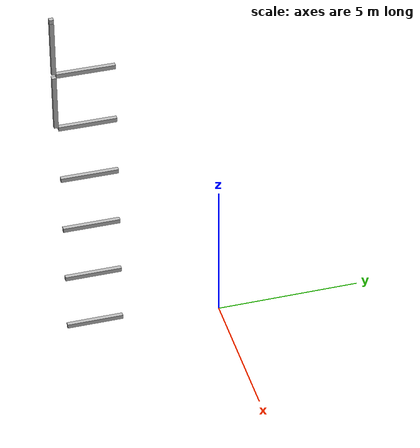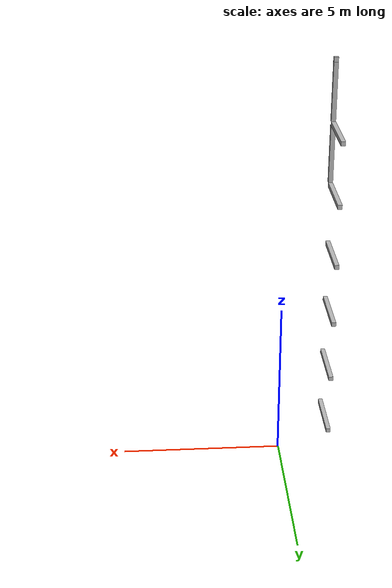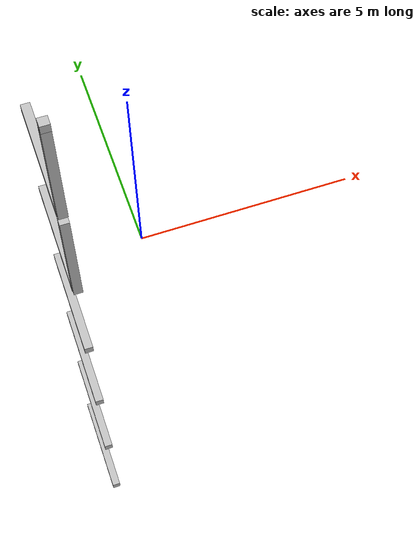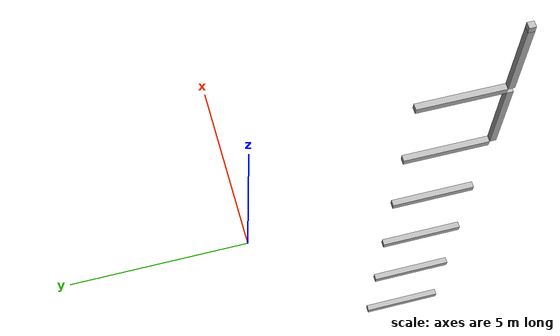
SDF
<sdf version="1.7">
 <world name="default">
  <model name="orthogonal_747_2.000.15_TS">
   <static>1</static>
   <link name="y_link_0_0_2">
    <inertial>
     <mass>1</mass>
     <inertia>
      <ixx>0.166667</ixx>
      <ixy>0</ixy>
      <ixz>0</ixz>
      <iyy>0.166667</iyy>
      <iyz>0</iyz>
      <izz>0.166667</izz>
     </inertia>
    </inertial>
    <pose>4.3 1.075 1.075 0 -0 0</pose>
    <visual name="visual_0">
     <laser_retro>50</laser_retro>
     <geometry><box><size>0.15 1e-06 0.15</size></box></geometry>
     <material>
      <script><name>Gazebo/Grey</name><uri>file://media/materials/scripts/gazebo.material</uri></script>
      <shader type="pixel"><normal_map>__default__</normal_map></shader>
      <ambient>0.678 0.498 0.659 1</ambient>
      <diffuse>0.7 0.7 0.7 1</diffuse>
      <specular>0.01 0.01 0.01 1</specular>
      <emissive>0 0 0 1</emissive>
     </material>
     <pose>0 -1 0 0 -0 0</pose>
     <transparency>1</transparency>
    </visual>
    <visual name="visual_1">
     <laser_retro>51</laser_retro>
     <geometry><box><size>0.15 1e-06 0.15</size></box></geometry>
     <material>
      <script><name>Gazebo/Grey</name><uri>file://media/materials/scripts/gazebo.material</uri></script>
      <shader type="pixel"><normal_map>__default__</normal_map></shader>
      <ambient>0.447 0.624 0.812 1</ambient>
      <diffuse>0.7 0.7 0.7 1</diffuse>
      <specular>0.01 0.01 0.01 1</specular>
      <emissive>0 0 0 1</emissive>
     </material>
     <pose>0 1 0 0 -0 0</pose>
     <transparency>1</transparency>
    </visual>
    <visual name="visual_2">
     <laser_retro>52</laser_retro>
     <geometry><box><size>0.15 2 1e-06</size></box></geometry>
     <material>
      <script><name>Gazebo/Grey</name><uri>file://media/materials/scripts/gazebo.material</uri></script>
      <shader type="pixel"><normal_map>__default__</normal_map></shader>
      <ambient>0.988 0.686 0.243 1</ambient>
      <diffuse>0.7 0.7 0.7 1</diffuse>
      <specular>0.01 0.01 0.01 1</specular>
      <emissive>0 0 0 1</emissive>
     </material>
     <pose>0 0 -0.075 0 -0 0</pose>
     <transparency>1</transparency>
    </visual>
    <visual name="visual_3">
     <laser_retro>53</laser_retro>
     <geometry><box><size>1e-06 2 0.15</size></box></geometry>
     <material>
      <script><name>Gazebo/Grey</name><uri>file://media/materials/scripts/gazebo.material</uri></script>
      <shader type="pixel"><normal_map>__default__</normal_map></shader>
      <ambient>0.988 0.914 0.31 1</ambient>
      <diffuse>0.7 0.7 0.7 1</diffuse>
      <specular>0.01 0.01 0.01 1</specular>
      <emissive>0 0 0 1</emissive>
     </material>
     <pose>0.075 0 0 0 -0 0</pose>
     <transparency>1</transparency>
    </visual>
    <visual name="visual_4">
     <laser_retro>54</laser_retro>
     <geometry><box><size>0.15 2 1e-06</size></box></geometry>
     <material>
      <script><name>Gazebo/Grey</name><uri>file://media/materials/scripts/gazebo.material</uri></script>
      <shader type="pixel"><normal_map>__default__</normal_map></shader>
      <ambient>0.937 0.161 0.161 1</ambient>
      <diffuse>0.7 0.7 0.7 1</diffuse>
      <specular>0.01 0.01 0.01 1</specular>
      <emissive>0 0 0 1</emissive>
     </material>
     <pose>0 0 0.075 0 -0 0</pose>
     <transparency>1</transparency>
    </visual>
    <visual name="visual_5">
     <laser_retro>55</laser_retro>
     <geometry><box><size>1e-06 2 0.15</size></box></geometry>
     <material>
      <script><name>Gazebo/Grey</name><uri>file://media/materials/scripts/gazebo.material</uri></script>
      <shader type="pixel"><normal_map>__default__</normal_map></shader>
      <ambient>0.541 0.886 0.204 1</ambient>
      <diffuse>0.7 0.7 0.7 1</diffuse>
      <specular>0.01 0.01 0.01 1</specular>
      <emissive>0 0 0 1</emissive>
     </material>
     <pose>-0.075 0 0 0 -0 0</pose>
     <transparency>1</transparency>
    </visual>
    <visual name="visual_texture">
     <geometry><box><size>0.149985 1.9998 0.149985</size></box></geometry>
     <material>
      <script>
       <uri>model://BASE_MODELS/simple_block_v2_textured/materials/scripts</uri>
       <uri>model://BASE_MODELS/simple_block_v2_textured/materials/textures</uri>
       <name>metal</name>
      </script>
     </material>
     <laser_retro>56</laser_retro>
    </visual>
    <collision name="collision">
     <geometry><box><size>0.15 2 0.15</size></box></geometry>
     <surface>
      <friction>
       <ode><mu>1</mu><mu2>1</mu2><fdir1>0 0 0</fdir1><slip1>0</slip1><slip2>0</slip2></ode>
       <torsional>
        <coefficient>1</coefficient>
        <patch_radius>0</patch_radius>
        <surface_radius>0</surface_radius>
        <use_patch_radius>1</use_patch_radius>
        <ode><slip>0</slip></ode>
       </torsional>
      </friction>
      <bounce><restitution_coefficient>0</restitution_coefficient><threshold>1e+06</threshold></bounce>
      <contact>
       <collide_without_contact>0</collide_without_contact>
       <collide_without_contact_bitmask>1</collide_without_contact_bitmask>
       <collide_bitmask>1</collide_bitmask>
       <ode>
        <soft_cfm>0</soft_cfm>
        <soft_erp>0.2</soft_erp>
        <kp>1e+13</kp>
        <kd>1</kd>
        <max_vel>0.01</max_vel>
        <min_depth>0</min_depth>
       </ode>
       <bullet>
        <split_impulse>1</split_impulse>
        <split_impulse_penetration_threshold>-0.01</split_impulse_penetration_threshold>
        <soft_cfm>0</soft_cfm>
        <soft_erp>0.2</soft_erp>
        <kp>1e+13</kp>
        <kd>1</kd>
       </bullet>
      </contact>
     </surface>
    </collision>
   </link>
   <link name="y_link_1_0_2">
    <inertial>
     <mass>1</mass>
     <inertia>
      <ixx>0.166667</ixx>
      <ixy>0</ixy>
      <ixz>0</ixz>
      <iyy>0.166667</iyy>
      <iyz>0</iyz>
      <izz>0.166667</izz>
     </inertia>
    </inertial>
    <pose>4.3 1.075 3.225 0 -0 0</pose>
    <visual name="visual_0">
     <laser_retro>813</laser_retro>
     <geometry><box><size>0.15 1e-06 0.15</size></box></geometry>
     <material>
      <script><name>Gazebo/Grey</name><uri>file://media/materials/scripts/gazebo.material</uri></script>
      <shader type="pixel"><normal_map>__default__</normal_map></shader>
      <ambient>0.678 0.498 0.659 1</ambient>
      <diffuse>0.7 0.7 0.7 1</diffuse>
      <specular>0.01 0.01 0.01 1</specular>
      <emissive>0 0 0 1</emissive>
     </material>
     <pose>0 -1 0 0 -0 0</pose>
     <transparency>1</transparency>
    </visual>
    <visual name="visual_1">
     <laser_retro>814</laser_retro>
     <geometry><box><size>0.15 1e-06 0.15</size></box></geometry>
     <material>
      <script><name>Gazebo/Grey</name><uri>file://media/materials/scripts/gazebo.material</uri></script>
      <shader type="pixel"><normal_map>__default__</normal_map></shader>
      <ambient>0.447 0.624 0.812 1</ambient>
      <diffuse>0.7 0.7 0.7 1</diffuse>
      <specular>0.01 0.01 0.01 1</specular>
      <emissive>0 0 0 1</emissive>
     </material>
     <pose>0 1 0 0 -0 0</pose>
     <transparency>1</transparency>
    </visual>
    <visual name="visual_2">
     <laser_retro>815</laser_retro>
     <geometry><box><size>0.15 2 1e-06</size></box></geometry>
     <material>
      <script><name>Gazebo/Grey</name><uri>file://media/materials/scripts/gazebo.material</uri></script>
      <shader type="pixel"><normal_map>__default__</normal_map></shader>
      <ambient>0.988 0.686 0.243 1</ambient>
      <diffuse>0.7 0.7 0.7 1</diffuse>
      <specular>0.01 0.01 0.01 1</specular>
      <emissive>0 0 0 1</emissive>
     </material>
     <pose>0 0 -0.075 0 -0 0</pose>
     <transparency>1</transparency>
    </visual>
    <visual name="visual_3">
     <laser_retro>816</laser_retro>
     <geometry><box><size>1e-06 2 0.15</size></box></geometry>
     <material>
      <script><name>Gazebo/Grey</name><uri>file://media/materials/scripts/gazebo.material</uri></script>
      <shader type="pixel"><normal_map>__default__</normal_map></shader>
      <ambient>0.988 0.914 0.31 1</ambient>
      <diffuse>0.7 0.7 0.7 1</diffuse>
      <specular>0.01 0.01 0.01 1</specular>
      <emissive>0 0 0 1</emissive>
     </material>
     <pose>0.075 0 0 0 -0 0</pose>
     <transparency>1</transparency>
    </visual>
    <visual name="visual_4">
     <laser_retro>817</laser_retro>
     <geometry><box><size>0.15 2 1e-06</size></box></geometry>
     <material>
      <script><name>Gazebo/Grey</name><uri>file://media/materials/scripts/gazebo.material</uri></script>
      <shader type="pixel"><normal_map>__default__</normal_map></shader>
      <ambient>0.937 0.161 0.161 1</ambient>
      <diffuse>0.7 0.7 0.7 1</diffuse>
      <specular>0.01 0.01 0.01 1</specular>
      <emissive>0 0 0 1</emissive>
     </material>
     <pose>0 0 0.075 0 -0 0</pose>
     <transparency>1</transparency>
    </visual>
    <visual name="visual_5">
     <laser_retro>818</laser_retro>
     <geometry><box><size>1e-06 2 0.15</size></box></geometry>
     <material>
      <script><name>Gazebo/Grey</name><uri>file://media/materials/scripts/gazebo.material</uri></script>
      <shader type="pixel"><normal_map>__default__</normal_map></shader>
      <ambient>0.541 0.886 0.204 1</ambient>
      <diffuse>0.7 0.7 0.7 1</diffuse>
      <specular>0.01 0.01 0.01 1</specular>
      <emissive>0 0 0 1</emissive>
     </material>
     <pose>-0.075 0 0 0 -0 0</pose>
     <transparency>1</transparency>
    </visual>
    <visual name="visual_texture">
     <geometry><box><size>0.149985 1.9998 0.149985</size></box></geometry>
     <material>
      <script>
       <uri>model://BASE_MODELS/simple_block_v2_textured/materials/scripts</uri>
       <uri>model://BASE_MODELS/simple_block_v2_textured/materials/textures</uri>
       <name>metal</name>
      </script>
     </material>
     <laser_retro>819</laser_retro>
    </visual>
    <collision name="collision">
     <geometry><box><size>0.15 2 0.15</size></box></geometry>
     <surface>
      <friction>
       <ode><mu>1</mu><mu2>1</mu2><fdir1>0 0 0</fdir1><slip1>0</slip1><slip2>0</slip2></ode>
       <torsional>
        <coefficient>1</coefficient>
        <patch_radius>0</patch_radius>
        <surface_radius>0</surface_radius>
        <use_patch_radius>1</use_patch_radius>
        <ode><slip>0</slip></ode>
       </torsional>
      </friction>
      <bounce><restitution_coefficient>0</restitution_coefficient><threshold>1e+06</threshold></bounce>
      <contact>
       <collide_without_contact>0</collide_without_contact>
       <collide_without_contact_bitmask>1</collide_without_contact_bitmask>
       <collide_bitmask>1</collide_bitmask>
       <ode>
        <soft_cfm>0</soft_cfm>
        <soft_erp>0.2</soft_erp>
        <kp>1e+13</kp>
        <kd>1</kd>
        <max_vel>0.01</max_vel>
        <min_depth>0</min_depth>
       </ode>
       <bullet>
        <split_impulse>1</split_impulse>
        <split_impulse_penetration_threshold>-0.01</split_impulse_penetration_threshold>
        <soft_cfm>0</soft_cfm>
        <soft_erp>0.2</soft_erp>
        <kp>1e+13</kp>
        <kd>1</kd>
       </bullet>
      </contact>
     </surface>
    </collision>
   </link>
   <link name="y_link_2_0_2">
    <inertial>
     <mass>1</mass>
     <inertia>
      <ixx>0.166667</ixx>
      <ixy>0</ixy>
      <ixz>0</ixz>
      <iyy>0.166667</iyy>
      <iyz>0</iyz>
      <izz>0.166667</izz>
     </inertia>
    </inertial>
    <pose>4.3 1.075 5.375 0 -0 0</pose>
    <visual name="visual_0">
     <laser_retro>1716</laser_retro>
     <geometry><box><size>0.15 1e-06 0.15</size></box></geometry>
     <material>
      <script><name>Gazebo/Grey</name><uri>file://media/materials/scripts/gazebo.material</uri></script>
      <shader type="pixel"><normal_map>__default__</normal_map></shader>
      <ambient>0.678 0.498 0.659 1</ambient>
      <diffuse>0.7 0.7 0.7 1</diffuse>
      <specular>0.01 0.01 0.01 1</specular>
      <emissive>0 0 0 1</emissive>
     </material>
     <pose>0 -1 0 0 -0 0</pose>
     <transparency>1</transparency>
    </visual>
    <visual name="visual_1">
     <laser_retro>1717</laser_retro>
     <geometry><box><size>0.15 1e-06 0.15</size></box></geometry>
     <material>
      <script><name>Gazebo/Grey</name><uri>file://media/materials/scripts/gazebo.material</uri></script>
      <shader type="pixel"><normal_map>__default__</normal_map></shader>
      <ambient>0.447 0.624 0.812 1</ambient>
      <diffuse>0.7 0.7 0.7 1</diffuse>
      <specular>0.01 0.01 0.01 1</specular>
      <emissive>0 0 0 1</emissive>
     </material>
     <pose>0 1 0 0 -0 0</pose>
     <transparency>1</transparency>
    </visual>
    <visual name="visual_2">
     <laser_retro>1718</laser_retro>
     <geometry><box><size>0.15 2 1e-06</size></box></geometry>
     <material>
      <script><name>Gazebo/Grey</name><uri>file://media/materials/scripts/gazebo.material</uri></script>
      <shader type="pixel"><normal_map>__default__</normal_map></shader>
      <ambient>0.988 0.686 0.243 1</ambient>
      <diffuse>0.7 0.7 0.7 1</diffuse>
      <specular>0.01 0.01 0.01 1</specular>
      <emissive>0 0 0 1</emissive>
     </material>
     <pose>0 0 -0.075 0 -0 0</pose>
     <transparency>1</transparency>
    </visual>
    <visual name="visual_3">
     <laser_retro>1719</laser_retro>
     <geometry><box><size>1e-06 2 0.15</size></box></geometry>
     <material>
      <script><name>Gazebo/Grey</name><uri>file://media/materials/scripts/gazebo.material</uri></script>
      <shader type="pixel"><normal_map>__default__</normal_map></shader>
      <ambient>0.988 0.914 0.31 1</ambient>
      <diffuse>0.7 0.7 0.7 1</diffuse>
      <specular>0.01 0.01 0.01 1</specular>
      <emissive>0 0 0 1</emissive>
     </material>
     <pose>0.075 0 0 0 -0 0</pose>
     <transparency>1</transparency>
    </visual>
    <visual name="visual_4">
     <laser_retro>1720</laser_retro>
     <geometry><box><size>0.15 2 1e-06</size></box></geometry>
     <material>
      <script><name>Gazebo/Grey</name><uri>file://media/materials/scripts/gazebo.material</uri></script>
      <shader type="pixel"><normal_map>__default__</normal_map></shader>
      <ambient>0.937 0.161 0.161 1</ambient>
      <diffuse>0.7 0.7 0.7 1</diffuse>
      <specular>0.01 0.01 0.01 1</specular>
      <emissive>0 0 0 1</emissive>
     </material>
     <pose>0 0 0.075 0 -0 0</pose>
     <transparency>1</transparency>
    </visual>
    <visual name="visual_5">
     <laser_retro>1721</laser_retro>
     <geometry><box><size>1e-06 2 0.15</size></box></geometry>
     <material>
      <script><name>Gazebo/Grey</name><uri>file://media/materials/scripts/gazebo.material</uri></script>
      <shader type="pixel"><normal_map>__default__</normal_map></shader>
      <ambient>0.541 0.886 0.204 1</ambient>
      <diffuse>0.7 0.7 0.7 1</diffuse>
      <specular>0.01 0.01 0.01 1</specular>
      <emissive>0 0 0 1</emissive>
     </material>
     <pose>-0.075 0 0 0 -0 0</pose>
     <transparency>1</transparency>
    </visual>
    <visual name="visual_texture">
     <geometry><box><size>0.149985 1.9998 0.149985</size></box></geometry>
     <material>
      <script>
       <uri>model://BASE_MODELS/simple_block_v2_textured/materials/scripts</uri>
       <uri>model://BASE_MODELS/simple_block_v2_textured/materials/textures</uri>
       <name>metal</name>
      </script>
     </material>
     <laser_retro>1722</laser_retro>
    </visual>
    <collision name="collision">
     <geometry><box><size>0.15 2 0.15</size></box></geometry>
     <surface>
      <friction>
       <ode><mu>1</mu><mu2>1</mu2><fdir1>0 0 0</fdir1><slip1>0</slip1><slip2>0</slip2></ode>
       <torsional>
        <coefficient>1</coefficient>
        <patch_radius>0</patch_radius>
        <surface_radius>0</surface_radius>
        <use_patch_radius>1</use_patch_radius>
        <ode><slip>0</slip></ode>
       </torsional>
      </friction>
      <bounce><restitution_coefficient>0</restitution_coefficient><threshold>1e+06</threshold></bounce>
      <contact>
       <collide_without_contact>0</collide_without_contact>
       <collide_without_contact_bitmask>1</collide_without_contact_bitmask>
       <collide_bitmask>1</collide_bitmask>
       <ode>
        <soft_cfm>0</soft_cfm>
        <soft_erp>0.2</soft_erp>
        <kp>1e+13</kp>
        <kd>1</kd>
        <max_vel>0.01</max_vel>
        <min_depth>0</min_depth>
       </ode>
       <bullet>
        <split_impulse>1</split_impulse>
        <split_impulse_penetration_threshold>-0.01</split_impulse_penetration_threshold>
        <soft_cfm>0</soft_cfm>
        <soft_erp>0.2</soft_erp>
        <kp>1e+13</kp>
        <kd>1</kd>
       </bullet>
      </contact>
     </surface>
    </collision>
   </link>
   <link name="y_link_3_0_2">
    <inertial>
     <mass>1</mass>
     <inertia>
      <ixx>0.166667</ixx>
      <ixy>0</ixy>
      <ixz>0</ixz>
      <iyy>0.166667</iyy>
      <iyz>0</iyz>
      <izz>0.166667</izz>
     </inertia>
    </inertial>
    <pose>4.3 1.075 7.525 0 -0 0</pose>
    <visual name="visual_0">
     <laser_retro>2619</laser_retro>
     <geometry><box><size>0.15 1e-06 0.15</size></box></geometry>
     <material>
      <script><name>Gazebo/Grey</name><uri>file://media/materials/scripts/gazebo.material</uri></script>
      <shader type="pixel"><normal_map>__default__</normal_map></shader>
      <ambient>0.678 0.498 0.659 1</ambient>
      <diffuse>0.7 0.7 0.7 1</diffuse>
      <specular>0.01 0.01 0.01 1</specular>
      <emissive>0 0 0 1</emissive>
     </material>
     <pose>0 -1 0 0 -0 0</pose>
     <transparency>1</transparency>
    </visual>
    <visual name="visual_1">
     <laser_retro>2620</laser_retro>
     <geometry><box><size>0.15 1e-06 0.15</size></box></geometry>
     <material>
      <script><name>Gazebo/Grey</name><uri>file://media/materials/scripts/gazebo.material</uri></script>
      <shader type="pixel"><normal_map>__default__</normal_map></shader>
      <ambient>0.447 0.624 0.812 1</ambient>
      <diffuse>0.7 0.7 0.7 1</diffuse>
      <specular>0.01 0.01 0.01 1</specular>
      <emissive>0 0 0 1</emissive>
     </material>
     <pose>0 1 0 0 -0 0</pose>
     <transparency>1</transparency>
    </visual>
    <visual name="visual_2">
     <laser_retro>2621</laser_retro>
     <geometry><box><size>0.15 2 1e-06</size></box></geometry>
     <material>
      <script><name>Gazebo/Grey</name><uri>file://media/materials/scripts/gazebo.material</uri></script>
      <shader type="pixel"><normal_map>__default__</normal_map></shader>
      <ambient>0.988 0.686 0.243 1</ambient>
      <diffuse>0.7 0.7 0.7 1</diffuse>
      <specular>0.01 0.01 0.01 1</specular>
      <emissive>0 0 0 1</emissive>
     </material>
     <pose>0 0 -0.075 0 -0 0</pose>
     <transparency>1</transparency>
    </visual>
    <visual name="visual_3">
     <laser_retro>2622</laser_retro>
     <geometry><box><size>1e-06 2 0.15</size></box></geometry>
     <material>
      <script><name>Gazebo/Grey</name><uri>file://media/materials/scripts/gazebo.material</uri></script>
      <shader type="pixel"><normal_map>__default__</normal_map></shader>
      <ambient>0.988 0.914 0.31 1</ambient>
      <diffuse>0.7 0.7 0.7 1</diffuse>
      <specular>0.01 0.01 0.01 1</specular>
      <emissive>0 0 0 1</emissive>
     </material>
     <pose>0.075 0 0 0 -0 0</pose>
     <transparency>1</transparency>
    </visual>
    <visual name="visual_4">
     <laser_retro>2623</laser_retro>
     <geometry><box><size>0.15 2 1e-06</size></box></geometry>
     <material>
      <script><name>Gazebo/Grey</name><uri>file://media/materials/scripts/gazebo.material</uri></script>
      <shader type="pixel"><normal_map>__default__</normal_map></shader>
      <ambient>0.937 0.161 0.161 1</ambient>
      <diffuse>0.7 0.7 0.7 1</diffuse>
      <specular>0.01 0.01 0.01 1</specular>
      <emissive>0 0 0 1</emissive>
     </material>
     <pose>0 0 0.075 0 -0 0</pose>
     <transparency>1</transparency>
    </visual>
    <visual name="visual_5">
     <laser_retro>2624</laser_retro>
     <geometry><box><size>1e-06 2 0.15</size></box></geometry>
     <material>
      <script><name>Gazebo/Grey</name><uri>file://media/materials/scripts/gazebo.material</uri></script>
      <shader type="pixel"><normal_map>__default__</normal_map></shader>
      <ambient>0.541 0.886 0.204 1</ambient>
      <diffuse>0.7 0.7 0.7 1</diffuse>
      <specular>0.01 0.01 0.01 1</specular>
      <emissive>0 0 0 1</emissive>
     </material>
     <pose>-0.075 0 0 0 -0 0</pose>
     <transparency>1</transparency>
    </visual>
    <visual name="visual_texture">
     <geometry><box><size>0.149985 1.9998 0.149985</size></box></geometry>
     <material>
      <script>
       <uri>model://BASE_MODELS/simple_block_v2_textured/materials/scripts</uri>
       <uri>model://BASE_MODELS/simple_block_v2_textured/materials/textures</uri>
       <name>metal</name>
      </script>
     </material>
     <laser_retro>2625</laser_retro>
    </visual>
    <collision name="collision">
     <geometry><box><size>0.15 2 0.15</size></box></geometry>
     <surface>
      <friction>
       <ode><mu>1</mu><mu2>1</mu2><fdir1>0 0 0</fdir1><slip1>0</slip1><slip2>0</slip2></ode>
       <torsional>
        <coefficient>1</coefficient>
        <patch_radius>0</patch_radius>
        <surface_radius>0</surface_radius>
        <use_patch_radius>1</use_patch_radius>
        <ode><slip>0</slip></ode>
       </torsional>
      </friction>
      <bounce><restitution_coefficient>0</restitution_coefficient><threshold>1e+06</threshold></bounce>
      <contact>
       <collide_without_contact>0</collide_without_contact>
       <collide_without_contact_bitmask>1</collide_without_contact_bitmask>
       <collide_bitmask>1</collide_bitmask>
       <ode>
        <soft_cfm>0</soft_cfm>
        <soft_erp>0.2</soft_erp>
        <kp>1e+13</kp>
        <kd>1</kd>
        <max_vel>0.01</max_vel>
        <min_depth>0</min_depth>
       </ode>
       <bullet>
        <split_impulse>1</split_impulse>
        <split_impulse_penetration_threshold>-0.01</split_impulse_penetration_threshold>
        <soft_cfm>0</soft_cfm>
        <soft_erp>0.2</soft_erp>
        <kp>1e+13</kp>
        <kd>1</kd>
       </bullet>
      </contact>
     </surface>
    </collision>
   </link>
   <link name="y_link_4_0_2">
    <inertial>
     <mass>1</mass>
     <inertia>
      <ixx>0.166667</ixx>
      <ixy>0</ixy>
      <ixz>0</ixz>
      <iyy>0.166667</iyy>
      <iyz>0</iyz>
      <izz>0.166667</izz>
     </inertia>
    </inertial>
    <pose>4.3 1.075 9.675 0 -0 0</pose>
    <visual name="visual_0">
     <laser_retro>3522</laser_retro>
     <geometry><box><size>0.15 1e-06 0.15</size></box></geometry>
     <material>
      <script><name>Gazebo/Grey</name><uri>file://media/materials/scripts/gazebo.material</uri></script>
      <shader type="pixel"><normal_map>__default__</normal_map></shader>
      <ambient>0.678 0.498 0.659 1</ambient>
      <diffuse>0.7 0.7 0.7 1</diffuse>
      <specular>0.01 0.01 0.01 1</specular>
      <emissive>0 0 0 1</emissive>
     </material>
     <pose>0 -1 0 0 -0 0</pose>
     <transparency>1</transparency>
    </visual>
    <visual name="visual_1">
     <laser_retro>3523</laser_retro>
     <geometry><box><size>0.15 1e-06 0.15</size></box></geometry>
     <material>
      <script><name>Gazebo/Grey</name><uri>file://media/materials/scripts/gazebo.material</uri></script>
      <shader type="pixel"><normal_map>__default__</normal_map></shader>
      <ambient>0.447 0.624 0.812 1</ambient>
      <diffuse>0.7 0.7 0.7 1</diffuse>
      <specular>0.01 0.01 0.01 1</specular>
      <emissive>0 0 0 1</emissive>
     </material>
     <pose>0 1 0 0 -0 0</pose>
     <transparency>1</transparency>
    </visual>
    <visual name="visual_2">
     <laser_retro>3524</laser_retro>
     <geometry><box><size>0.15 2 1e-06</size></box></geometry>
     <material>
      <script><name>Gazebo/Grey</name><uri>file://media/materials/scripts/gazebo.material</uri></script>
      <shader type="pixel"><normal_map>__default__</normal_map></shader>
      <ambient>0.988 0.686 0.243 1</ambient>
      <diffuse>0.7 0.7 0.7 1</diffuse>
      <specular>0.01 0.01 0.01 1</specular>
      <emissive>0 0 0 1</emissive>
     </material>
     <pose>0 0 -0.075 0 -0 0</pose>
     <transparency>1</transparency>
    </visual>
    <visual name="visual_3">
     <laser_retro>3525</laser_retro>
     <geometry><box><size>1e-06 2 0.15</size></box></geometry>
     <material>
      <script><name>Gazebo/Grey</name><uri>file://media/materials/scripts/gazebo.material</uri></script>
      <shader type="pixel"><normal_map>__default__</normal_map></shader>
      <ambient>0.988 0.914 0.31 1</ambient>
      <diffuse>0.7 0.7 0.7 1</diffuse>
      <specular>0.01 0.01 0.01 1</specular>
      <emissive>0 0 0 1</emissive>
     </material>
     <pose>0.075 0 0 0 -0 0</pose>
     <transparency>1</transparency>
    </visual>
    <visual name="visual_4">
     <laser_retro>3526</laser_retro>
     <geometry><box><size>0.15 2 1e-06</size></box></geometry>
     <material>
      <script><name>Gazebo/Grey</name><uri>file://media/materials/scripts/gazebo.material</uri></script>
      <shader type="pixel"><normal_map>__default__</normal_map></shader>
      <ambient>0.937 0.161 0.161 1</ambient>
      <diffuse>0.7 0.7 0.7 1</diffuse>
      <specular>0.01 0.01 0.01 1</specular>
      <emissive>0 0 0 1</emissive>
     </material>
     <pose>0 0 0.075 0 -0 0</pose>
     <transparency>1</transparency>
    </visual>
    <visual name="visual_5">
     <laser_retro>3527</laser_retro>
     <geometry><box><size>1e-06 2 0.15</size></box></geometry>
     <material>
      <script><name>Gazebo/Grey</name><uri>file://media/materials/scripts/gazebo.material</uri></script>
      <shader type="pixel"><normal_map>__default__</normal_map></shader>
      <ambient>0.541 0.886 0.204 1</ambient>
      <diffuse>0.7 0.7 0.7 1</diffuse>
      <specular>0.01 0.01 0.01 1</specular>
      <emissive>0 0 0 1</emissive>
     </material>
     <pose>-0.075 0 0 0 -0 0</pose>
     <transparency>1</transparency>
    </visual>
    <visual name="visual_texture">
     <geometry><box><size>0.149985 1.9998 0.149985</size></box></geometry>
     <material>
      <script>
       <uri>model://BASE_MODELS/simple_block_v2_textured/materials/scripts</uri>
       <uri>model://BASE_MODELS/simple_block_v2_textured/materials/textures</uri>
       <name>metal</name>
      </script>
     </material>
     <laser_retro>3528</laser_retro>
    </visual>
    <collision name="collision">
     <geometry><box><size>0.15 2 0.15</size></box></geometry>
     <surface>
      <friction>
       <ode><mu>1</mu><mu2>1</mu2><fdir1>0 0 0</fdir1><slip1>0</slip1><slip2>0</slip2></ode>
       <torsional>
        <coefficient>1</coefficient>
        <patch_radius>0</patch_radius>
        <surface_radius>0</surface_radius>
        <use_patch_radius>1</use_patch_radius>
        <ode><slip>0</slip></ode>
       </torsional>
      </friction>
      <bounce><restitution_coefficient>0</restitution_coefficient><threshold>1e+06</threshold></bounce>
      <contact>
       <collide_without_contact>0</collide_without_contact>
       <collide_without_contact_bitmask>1</collide_without_contact_bitmask>
       <collide_bitmask>1</collide_bitmask>
       <ode>
        <soft_cfm>0</soft_cfm>
        <soft_erp>0.2</soft_erp>
        <kp>1e+13</kp>
        <kd>1</kd>
        <max_vel>0.01</max_vel>
        <min_depth>0</min_depth>
       </ode>
       <bullet>
        <split_impulse>1</split_impulse>
        <split_impulse_penetration_threshold>-0.01</split_impulse_penetration_threshold>
        <soft_cfm>0</soft_cfm>
        <soft_erp>0.2</soft_erp>
        <kp>1e+13</kp>
        <kd>1</kd>
       </bullet>
      </contact>
     </surface>
    </collision>
   </link>
   <link name="y_link_5_0_2">
    <inertial>
     <mass>1</mass>
     <inertia>
      <ixx>0.166667</ixx>
      <ixy>0</ixy>
      <ixz>0</ixz>
      <iyy>0.166667</iyy>
      <iyz>0</iyz>
      <izz>0.166667</izz>
     </inertia>
    </inertial>
    <pose>4.3 1.075 11.825 0 -0 0</pose>
    <visual name="visual_0">
     <laser_retro>4425</laser_retro>
     <geometry><box><size>0.15 1e-06 0.15</size></box></geometry>
     <material>
      <script><name>Gazebo/Grey</name><uri>file://media/materials/scripts/gazebo.material</uri></script>
      <shader type="pixel"><normal_map>__default__</normal_map></shader>
      <ambient>0.678 0.498 0.659 1</ambient>
      <diffuse>0.7 0.7 0.7 1</diffuse>
      <specular>0.01 0.01 0.01 1</specular>
      <emissive>0 0 0 1</emissive>
     </material>
     <pose>0 -1 0 0 -0 0</pose>
     <transparency>1</transparency>
    </visual>
    <visual name="visual_1">
     <laser_retro>4426</laser_retro>
     <geometry><box><size>0.15 1e-06 0.15</size></box></geometry>
     <material>
      <script><name>Gazebo/Grey</name><uri>file://media/materials/scripts/gazebo.material</uri></script>
      <shader type="pixel"><normal_map>__default__</normal_map></shader>
      <ambient>0.447 0.624 0.812 1</ambient>
      <diffuse>0.7 0.7 0.7 1</diffuse>
      <specular>0.01 0.01 0.01 1</specular>
      <emissive>0 0 0 1</emissive>
     </material>
     <pose>0 1 0 0 -0 0</pose>
     <transparency>1</transparency>
    </visual>
    <visual name="visual_2">
     <laser_retro>4427</laser_retro>
     <geometry><box><size>0.15 2 1e-06</size></box></geometry>
     <material>
      <script><name>Gazebo/Grey</name><uri>file://media/materials/scripts/gazebo.material</uri></script>
      <shader type="pixel"><normal_map>__default__</normal_map></shader>
      <ambient>0.988 0.686 0.243 1</ambient>
      <diffuse>0.7 0.7 0.7 1</diffuse>
      <specular>0.01 0.01 0.01 1</specular>
      <emissive>0 0 0 1</emissive>
     </material>
     <pose>0 0 -0.075 0 -0 0</pose>
     <transparency>1</transparency>
    </visual>
    <visual name="visual_3">
     <laser_retro>4428</laser_retro>
     <geometry><box><size>1e-06 2 0.15</size></box></geometry>
     <material>
      <script><name>Gazebo/Grey</name><uri>file://media/materials/scripts/gazebo.material</uri></script>
      <shader type="pixel"><normal_map>__default__</normal_map></shader>
      <ambient>0.988 0.914 0.31 1</ambient>
      <diffuse>0.7 0.7 0.7 1</diffuse>
      <specular>0.01 0.01 0.01 1</specular>
      <emissive>0 0 0 1</emissive>
     </material>
     <pose>0.075 0 0 0 -0 0</pose>
     <transparency>1</transparency>
    </visual>
    <visual name="visual_4">
     <laser_retro>4429</laser_retro>
     <geometry><box><size>0.15 2 1e-06</size></box></geometry>
     <material>
      <script><name>Gazebo/Grey</name><uri>file://media/materials/scripts/gazebo.material</uri></script>
      <shader type="pixel"><normal_map>__default__</normal_map></shader>
      <ambient>0.937 0.161 0.161 1</ambient>
      <diffuse>0.7 0.7 0.7 1</diffuse>
      <specular>0.01 0.01 0.01 1</specular>
      <emissive>0 0 0 1</emissive>
     </material>
     <pose>0 0 0.075 0 -0 0</pose>
     <transparency>1</transparency>
    </visual>
    <visual name="visual_5">
     <laser_retro>4430</laser_retro>
     <geometry><box><size>1e-06 2 0.15</size></box></geometry>
     <material>
      <script><name>Gazebo/Grey</name><uri>file://media/materials/scripts/gazebo.material</uri></script>
      <shader type="pixel"><normal_map>__default__</normal_map></shader>
      <ambient>0.541 0.886 0.204 1</ambient>
      <diffuse>0.7 0.7 0.7 1</diffuse>
      <specular>0.01 0.01 0.01 1</specular>
      <emissive>0 0 0 1</emissive>
     </material>
     <pose>-0.075 0 0 0 -0 0</pose>
     <transparency>1</transparency>
    </visual>
    <visual name="visual_texture">
     <geometry><box><size>0.149985 1.9998 0.149985</size></box></geometry>
     <material>
      <script>
       <uri>model://BASE_MODELS/simple_block_v2_textured/materials/scripts</uri>
       <uri>model://BASE_MODELS/simple_block_v2_textured/materials/textures</uri>
       <name>metal</name>
      </script>
     </material>
     <laser_retro>4431</laser_retro>
    </visual>
    <collision name="collision">
     <geometry><box><size>0.15 2 0.15</size></box></geometry>
     <surface>
      <friction>
       <ode><mu>1</mu><mu2>1</mu2><fdir1>0 0 0</fdir1><slip1>0</slip1><slip2>0</slip2></ode>
       <torsional>
        <coefficient>1</coefficient>
        <patch_radius>0</patch_radius>
        <surface_radius>0</surface_radius>
        <use_patch_radius>1</use_patch_radius>
        <ode><slip>0</slip></ode>
       </torsional>
      </friction>
      <bounce><restitution_coefficient>0</restitution_coefficient><threshold>1e+06</threshold></bounce>
      <contact>
       <collide_without_contact>0</collide_without_contact>
       <collide_without_contact_bitmask>1</collide_without_contact_bitmask>
       <collide_bitmask>1</collide_bitmask>
       <ode>
        <soft_cfm>0</soft_cfm>
        <soft_erp>0.2</soft_erp>
        <kp>1e+13</kp>
        <kd>1</kd>
        <max_vel>0.01</max_vel>
        <min_depth>0</min_depth>
       </ode>
       <bullet>
        <split_impulse>1</split_impulse>
        <split_impulse_penetration_threshold>-0.01</split_impulse_penetration_threshold>
        <soft_cfm>0</soft_cfm>
        <soft_erp>0.2</soft_erp>
        <kp>1e+13</kp>
        <kd>1</kd>
       </bullet>
      </contact>
     </surface>
    </collision>
   </link>
   <link name="z_link_5_0_2">
    <inertial>
     <mass>1</mass>
     <inertia>
      <ixx>0.166667</ixx>
      <ixy>0</ixy>
      <ixz>0</ixz>
      <iyy>0.166667</iyy>
      <iyz>0</iyz>
      <izz>0.166667</izz>
     </inertia>
    </inertial>
    <pose>4.3 0 10.75 0 -0 0</pose>
    <visual name="visual_0">
     <laser_retro>4439</laser_retro>
     <geometry><box><size>0.15 1e-06 2</size></box></geometry>
     <material>
      <script><name>Gazebo/Grey</name><uri>file://media/materials/scripts/gazebo.material</uri></script>
      <shader type="pixel"><normal_map>__default__</normal_map></shader>
      <ambient>0.678 0.498 0.659 1</ambient>
      <diffuse>0.7 0.7 0.7 1</diffuse>
      <specular>0.01 0.01 0.01 1</specular>
      <emissive>0 0 0 1</emissive>
     </material>
     <pose>0 -0.075 0 0 -0 0</pose>
     <transparency>1</transparency>
    </visual>
    <visual name="visual_1">
     <laser_retro>4440</laser_retro>
     <geometry><box><size>0.15 1e-06 2</size></box></geometry>
     <material>
      <script><name>Gazebo/Grey</name><uri>file://media/materials/scripts/gazebo.material</uri></script>
      <shader type="pixel"><normal_map>__default__</normal_map></shader>
      <ambient>0.447 0.624 0.812 1</ambient>
      <diffuse>0.7 0.7 0.7 1</diffuse>
      <specular>0.01 0.01 0.01 1</specular>
      <emissive>0 0 0 1</emissive>
     </material>
     <pose>0 0.075 0 0 -0 0</pose>
     <transparency>1</transparency>
    </visual>
    <visual name="visual_2">
     <laser_retro>4441</laser_retro>
     <geometry><box><size>0.15 0.15 1e-06</size></box></geometry>
     <material>
      <script><name>Gazebo/Grey</name><uri>file://media/materials/scripts/gazebo.material</uri></script>
      <shader type="pixel"><normal_map>__default__</normal_map></shader>
      <ambient>0.988 0.686 0.243 1</ambient>
      <diffuse>0.7 0.7 0.7 1</diffuse>
      <specular>0.01 0.01 0.01 1</specular>
      <emissive>0 0 0 1</emissive>
     </material>
     <pose>0 0 -1 0 -0 0</pose>
     <transparency>1</transparency>
    </visual>
    <visual name="visual_3">
     <laser_retro>4442</laser_retro>
     <geometry><box><size>1e-06 0.15 2</size></box></geometry>
     <material>
      <script><name>Gazebo/Grey</name><uri>file://media/materials/scripts/gazebo.material</uri></script>
      <shader type="pixel"><normal_map>__default__</normal_map></shader>
      <ambient>0.988 0.914 0.31 1</ambient>
      <diffuse>0.7 0.7 0.7 1</diffuse>
      <specular>0.01 0.01 0.01 1</specular>
      <emissive>0 0 0 1</emissive>
     </material>
     <pose>0.075 0 0 0 -0 0</pose>
     <transparency>1</transparency>
    </visual>
    <visual name="visual_4">
     <laser_retro>4443</laser_retro>
     <geometry><box><size>0.15 0.15 1e-06</size></box></geometry>
     <material>
      <script><name>Gazebo/Grey</name><uri>file://media/materials/scripts/gazebo.material</uri></script>
      <shader type="pixel"><normal_map>__default__</normal_map></shader>
      <ambient>0.937 0.161 0.161 1</ambient>
      <diffuse>0.7 0.7 0.7 1</diffuse>
      <specular>0.01 0.01 0.01 1</specular>
      <emissive>0 0 0 1</emissive>
     </material>
     <pose>0 0 1 0 -0 0</pose>
     <transparency>1</transparency>
    </visual>
    <visual name="visual_5">
     <laser_retro>4444</laser_retro>
     <geometry><box><size>1e-06 0.15 2</size></box></geometry>
     <material>
      <script><name>Gazebo/Grey</name><uri>file://media/materials/scripts/gazebo.material</uri></script>
      <shader type="pixel"><normal_map>__default__</normal_map></shader>
      <ambient>0.541 0.886 0.204 1</ambient>
      <diffuse>0.7 0.7 0.7 1</diffuse>
      <specular>0.01 0.01 0.01 1</specular>
      <emissive>0 0 0 1</emissive>
     </material>
     <pose>-0.075 0 0 0 -0 0</pose>
     <transparency>1</transparency>
    </visual>
    <visual name="visual_texture">
     <geometry><box><size>0.149985 0.149985 1.9998</size></box></geometry>
     <material>
      <script>
       <uri>model://BASE_MODELS/simple_block_v2_textured/materials/scripts</uri>
       <uri>model://BASE_MODELS/simple_block_v2_textured/materials/textures</uri>
       <name>metal</name>
      </script>
     </material>
     <laser_retro>4445</laser_retro>
    </visual>
    <collision name="collision">
     <geometry><box><size>0.15 0.15 2</size></box></geometry>
     <surface>
      <friction>
       <ode><mu>1</mu><mu2>1</mu2><fdir1>0 0 0</fdir1><slip1>0</slip1><slip2>0</slip2></ode>
       <torsional>
        <coefficient>1</coefficient>
        <patch_radius>0</patch_radius>
        <surface_radius>0</surface_radius>
        <use_patch_radius>1</use_patch_radius>
        <ode><slip>0</slip></ode>
       </torsional>
      </friction>
      <bounce><restitution_coefficient>0</restitution_coefficient><threshold>1e+06</threshold></bounce>
      <contact>
       <collide_without_contact>0</collide_without_contact>
       <collide_without_contact_bitmask>1</collide_without_contact_bitmask>
       <collide_bitmask>1</collide_bitmask>
       <ode>
        <soft_cfm>0</soft_cfm>
        <soft_erp>0.2</soft_erp>
        <kp>1e+13</kp>
        <kd>1</kd>
        <max_vel>0.01</max_vel>
        <min_depth>0</min_depth>
       </ode>
       <bullet>
        <split_impulse>1</split_impulse>
        <split_impulse_penetration_threshold>-0.01</split_impulse_penetration_threshold>
        <soft_cfm>0</soft_cfm>
        <soft_erp>0.2</soft_erp>
        <kp>1e+13</kp>
        <kd>1</kd>
       </bullet>
      </contact>
     </surface>
    </collision>
   </link>
   <link name="u_link_6_0_2">
    <inertial>
     <mass>1</mass>
     <inertia>
      <ixx>0.166667</ixx>
      <ixy>0</ixy>
      <ixz>0</ixz>
      <iyy>0.166667</iyy>
      <iyz>0</iyz>
      <izz>0.166667</izz>
     </inertia>
    </inertial>
    <pose>4.3 0 13.975 0 -0 0</pose>
    <visual name="visual_0">
     <laser_retro>5335</laser_retro>
     <geometry><box><size>0.15 1e-06 0.15</size></box></geometry>
     <material>
      <script><name>Gazebo/Grey</name><uri>file://media/materials/scripts/gazebo.material</uri></script>
      <shader type="pixel"><normal_map>__default__</normal_map></shader>
      <ambient>0.678 0.498 0.659 1</ambient>
      <diffuse>0.7 0.7 0.7 1</diffuse>
      <specular>0.01 0.01 0.01 1</specular>
      <emissive>0 0 0 1</emissive>
     </material>
     <pose>0 -0.075 0 0 -0 0</pose>
     <transparency>1</transparency>
    </visual>
    <visual name="visual_1">
     <laser_retro>5336</laser_retro>
     <geometry><box><size>0.15 1e-06 0.15</size></box></geometry>
     <material>
      <script><name>Gazebo/Grey</name><uri>file://media/materials/scripts/gazebo.material</uri></script>
      <shader type="pixel"><normal_map>__default__</normal_map></shader>
      <ambient>0.447 0.624 0.812 1</ambient>
      <diffuse>0.7 0.7 0.7 1</diffuse>
      <specular>0.01 0.01 0.01 1</specular>
      <emissive>0 0 0 1</emissive>
     </material>
     <pose>0 0.075 0 0 -0 0</pose>
     <transparency>1</transparency>
    </visual>
    <visual name="visual_2">
     <laser_retro>5337</laser_retro>
     <geometry><box><size>0.15 0.15 1e-06</size></box></geometry>
     <material>
      <script><name>Gazebo/Grey</name><uri>file://media/materials/scripts/gazebo.material</uri></script>
      <shader type="pixel"><normal_map>__default__</normal_map></shader>
      <ambient>0.988 0.686 0.243 1</ambient>
      <diffuse>0.7 0.7 0.7 1</diffuse>
      <specular>0.01 0.01 0.01 1</specular>
      <emissive>0 0 0 1</emissive>
     </material>
     <pose>0 0 -0.075 0 -0 0</pose>
     <transparency>1</transparency>
    </visual>
    <visual name="visual_3">
     <laser_retro>5338</laser_retro>
     <geometry><box><size>1e-06 0.15 0.15</size></box></geometry>
     <material>
      <script><name>Gazebo/Grey</name><uri>file://media/materials/scripts/gazebo.material</uri></script>
      <shader type="pixel"><normal_map>__default__</normal_map></shader>
      <ambient>0.988 0.914 0.31 1</ambient>
      <diffuse>0.7 0.7 0.7 1</diffuse>
      <specular>0.01 0.01 0.01 1</specular>
      <emissive>0 0 0 1</emissive>
     </material>
     <pose>0.075 0 0 0 -0 0</pose>
     <transparency>1</transparency>
    </visual>
    <visual name="visual_4">
     <laser_retro>5339</laser_retro>
     <geometry><box><size>0.15 0.15 1e-06</size></box></geometry>
     <material>
      <script><name>Gazebo/Grey</name><uri>file://media/materials/scripts/gazebo.material</uri></script>
      <shader type="pixel"><normal_map>__default__</normal_map></shader>
      <ambient>0.937 0.161 0.161 1</ambient>
      <diffuse>0.7 0.7 0.7 1</diffuse>
      <specular>0.01 0.01 0.01 1</specular>
      <emissive>0 0 0 1</emissive>
     </material>
     <pose>0 0 0.075 0 -0 0</pose>
     <transparency>1</transparency>
    </visual>
    <visual name="visual_5">
     <laser_retro>5340</laser_retro>
     <geometry><box><size>1e-06 0.15 0.15</size></box></geometry>
     <material>
      <script><name>Gazebo/Grey</name><uri>file://media/materials/scripts/gazebo.material</uri></script>
      <shader type="pixel"><normal_map>__default__</normal_map></shader>
      <ambient>0.541 0.886 0.204 1</ambient>
      <diffuse>0.7 0.7 0.7 1</diffuse>
      <specular>0.01 0.01 0.01 1</specular>
      <emissive>0 0 0 1</emissive>
     </material>
     <pose>-0.075 0 0 0 -0 0</pose>
     <transparency>1</transparency>
    </visual>
    <visual name="visual_texture">
     <geometry><box><size>0.149985 0.149985 0.149985</size></box></geometry>
     <material>
      <script>
       <uri>model://BASE_MODELS/simple_block_v2_textured/materials/scripts</uri>
       <uri>model://BASE_MODELS/simple_block_v2_textured/materials/textures</uri>
       <name>metal</name>
      </script>
     </material>
     <laser_retro>5341</laser_retro>
    </visual>
    <collision name="collision">
     <geometry><box><size>0.15 0.15 0.15</size></box></geometry>
     <surface>
      <friction>
       <ode><mu>1</mu><mu2>1</mu2><fdir1>0 0 0</fdir1><slip1>0</slip1><slip2>0</slip2></ode>
       <torsional>
        <coefficient>1</coefficient>
        <patch_radius>0</patch_radius>
        <surface_radius>0</surface_radius>
        <use_patch_radius>1</use_patch_radius>
        <ode><slip>0</slip></ode>
       </torsional>
      </friction>
      <bounce><restitution_coefficient>0</restitution_coefficient><threshold>1e+06</threshold></bounce>
      <contact>
       <collide_without_contact>0</collide_without_contact>
       <collide_without_contact_bitmask>1</collide_without_contact_bitmask>
       <collide_bitmask>1</collide_bitmask>
       <ode>
        <soft_cfm>0</soft_cfm>
        <soft_erp>0.2</soft_erp>
        <kp>1e+13</kp>
        <kd>1</kd>
        <max_vel>0.01</max_vel>
        <min_depth>0</min_depth>
       </ode>
       <bullet>
        <split_impulse>1</split_impulse>
        <split_impulse_penetration_threshold>-0.01</split_impulse_penetration_threshold>
        <soft_cfm>0</soft_cfm>
        <soft_erp>0.2</soft_erp>
        <kp>1e+13</kp>
        <kd>1</kd>
       </bullet>
      </contact>
     </surface>
    </collision>
   </link>
   <link name="z_link_6_0_2">
    <inertial>
     <mass>1</mass>
     <inertia>
      <ixx>0.166667</ixx>
      <ixy>0</ixy>
      <ixz>0</ixz>
      <iyy>0.166667</iyy>
      <iyz>0</iyz>
      <izz>0.166667</izz>
     </inertia>
    </inertial>
    <pose>4.3 0 12.9 0 -0 0</pose>
    <visual name="visual_0">
     <laser_retro>5342</laser_retro>
     <geometry><box><size>0.15 1e-06 2</size></box></geometry>
     <material>
      <script><name>Gazebo/Grey</name><uri>file://media/materials/scripts/gazebo.material</uri></script>
      <shader type="pixel"><normal_map>__default__</normal_map></shader>
      <ambient>0.678 0.498 0.659 1</ambient>
      <diffuse>0.7 0.7 0.7 1</diffuse>
      <specular>0.01 0.01 0.01 1</specular>
      <emissive>0 0 0 1</emissive>
     </material>
     <pose>0 -0.075 0 0 -0 0</pose>
     <transparency>1</transparency>
    </visual>
    <visual name="visual_1">
     <laser_retro>5343</laser_retro>
     <geometry><box><size>0.15 1e-06 2</size></box></geometry>
     <material>
      <script><name>Gazebo/Grey</name><uri>file://media/materials/scripts/gazebo.material</uri></script>
      <shader type="pixel"><normal_map>__default__</normal_map></shader>
      <ambient>0.447 0.624 0.812 1</ambient>
      <diffuse>0.7 0.7 0.7 1</diffuse>
      <specular>0.01 0.01 0.01 1</specular>
      <emissive>0 0 0 1</emissive>
     </material>
     <pose>0 0.075 0 0 -0 0</pose>
     <transparency>1</transparency>
    </visual>
    <visual name="visual_2">
     <laser_retro>5344</laser_retro>
     <geometry><box><size>0.15 0.15 1e-06</size></box></geometry>
     <material>
      <script><name>Gazebo/Grey</name><uri>file://media/materials/scripts/gazebo.material</uri></script>
      <shader type="pixel"><normal_map>__default__</normal_map></shader>
      <ambient>0.988 0.686 0.243 1</ambient>
      <diffuse>0.7 0.7 0.7 1</diffuse>
      <specular>0.01 0.01 0.01 1</specular>
      <emissive>0 0 0 1</emissive>
     </material>
     <pose>0 0 -1 0 -0 0</pose>
     <transparency>1</transparency>
    </visual>
    <visual name="visual_3">
     <laser_retro>5345</laser_retro>
     <geometry><box><size>1e-06 0.15 2</size></box></geometry>
     <material>
      <script><name>Gazebo/Grey</name><uri>file://media/materials/scripts/gazebo.material</uri></script>
      <shader type="pixel"><normal_map>__default__</normal_map></shader>
      <ambient>0.988 0.914 0.31 1</ambient>
      <diffuse>0.7 0.7 0.7 1</diffuse>
      <specular>0.01 0.01 0.01 1</specular>
      <emissive>0 0 0 1</emissive>
     </material>
     <pose>0.075 0 0 0 -0 0</pose>
     <transparency>1</transparency>
    </visual>
    <visual name="visual_4">
     <laser_retro>5346</laser_retro>
     <geometry><box><size>0.15 0.15 1e-06</size></box></geometry>
     <material>
      <script><name>Gazebo/Grey</name><uri>file://media/materials/scripts/gazebo.material</uri></script>
      <shader type="pixel"><normal_map>__default__</normal_map></shader>
      <ambient>0.937 0.161 0.161 1</ambient>
      <diffuse>0.7 0.7 0.7 1</diffuse>
      <specular>0.01 0.01 0.01 1</specular>
      <emissive>0 0 0 1</emissive>
     </material>
     <pose>0 0 1 0 -0 0</pose>
     <transparency>1</transparency>
    </visual>
    <visual name="visual_5">
     <laser_retro>5347</laser_retro>
     <geometry><box><size>1e-06 0.15 2</size></box></geometry>
     <material>
      <script><name>Gazebo/Grey</name><uri>file://media/materials/scripts/gazebo.material</uri></script>
      <shader type="pixel"><normal_map>__default__</normal_map></shader>
      <ambient>0.541 0.886 0.204 1</ambient>
      <diffuse>0.7 0.7 0.7 1</diffuse>
      <specular>0.01 0.01 0.01 1</specular>
      <emissive>0 0 0 1</emissive>
     </material>
     <pose>-0.075 0 0 0 -0 0</pose>
     <transparency>1</transparency>
    </visual>
    <visual name="visual_texture">
     <geometry><box><size>0.149985 0.149985 1.9998</size></box></geometry>
     <material>
      <script>
       <uri>model://BASE_MODELS/simple_block_v2_textured/materials/scripts</uri>
       <uri>model://BASE_MODELS/simple_block_v2_textured/materials/textures</uri>
       <name>metal</name>
      </script>
     </material>
     <laser_retro>5348</laser_retro>
    </visual>
    <collision name="collision">
     <geometry><box><size>0.15 0.15 2</size></box></geometry>
     <surface>
      <friction>
       <ode><mu>1</mu><mu2>1</mu2><fdir1>0 0 0</fdir1><slip1>0</slip1><slip2>0</slip2></ode>
       <torsional>
        <coefficient>1</coefficient>
        <patch_radius>0</patch_radius>
        <surface_radius>0</surface_radius>
        <use_patch_radius>1</use_patch_radius>
        <ode><slip>0</slip></ode>
       </torsional>
      </friction>
      <bounce><restitution_coefficient>0</restitution_coefficient><threshold>1e+06</threshold></bounce>
      <contact>
       <collide_without_contact>0</collide_without_contact>
       <collide_without_contact_bitmask>1</collide_without_contact_bitmask>
       <collide_bitmask>1</collide_bitmask>
       <ode>
        <soft_cfm>0</soft_cfm>
        <soft_erp>0.2</soft_erp>
        <kp>1e+13</kp>
        <kd>1</kd>
        <max_vel>0.01</max_vel>
        <min_depth>0</min_depth>
       </ode>
       <bullet>
        <split_impulse>1</split_impulse>
        <split_impulse_penetration_threshold>-0.01</split_impulse_penetration_threshold>
        <soft_cfm>0</soft_cfm>
        <soft_erp>0.2</soft_erp>
        <kp>1e+13</kp>
        <kd>1</kd>
       </bullet>
      </contact>
     </surface>
    </collision>
   </link>
   <pose>-6.47624 -5 -2.5 0 -0 0</pose>
  </model>
 </world>
</sdf>
